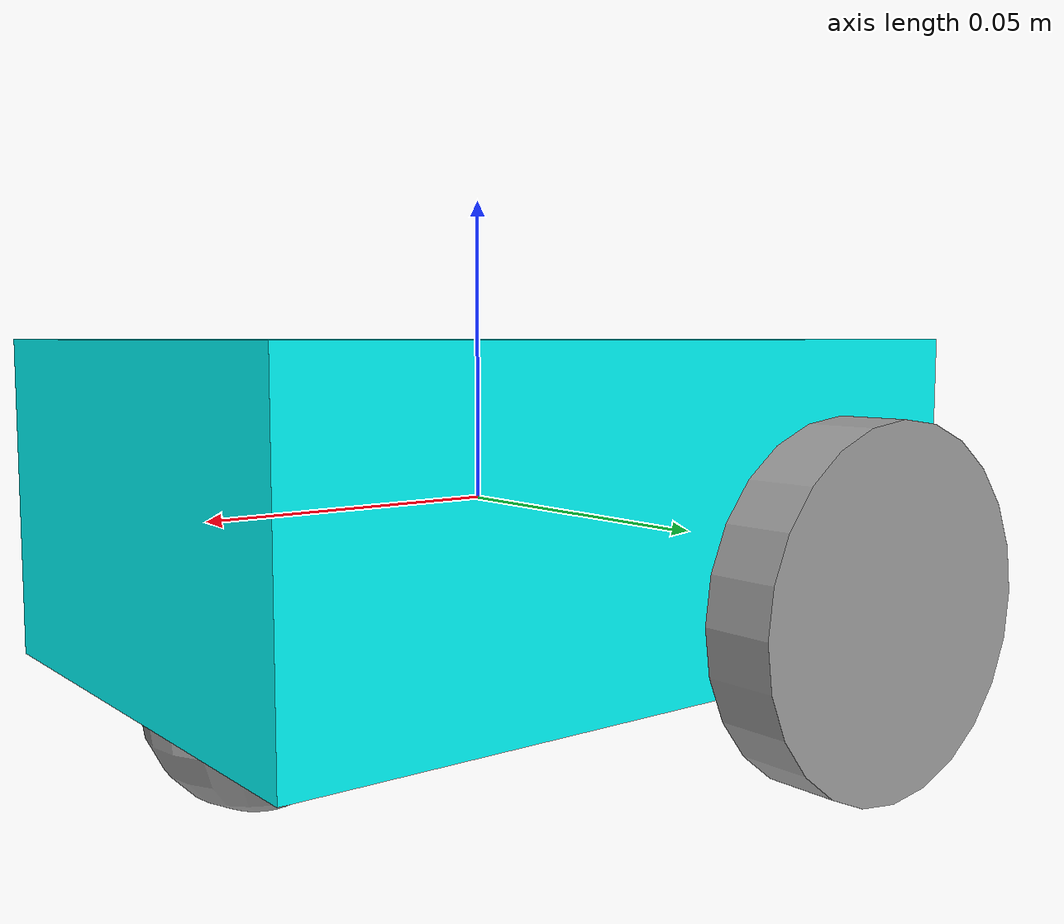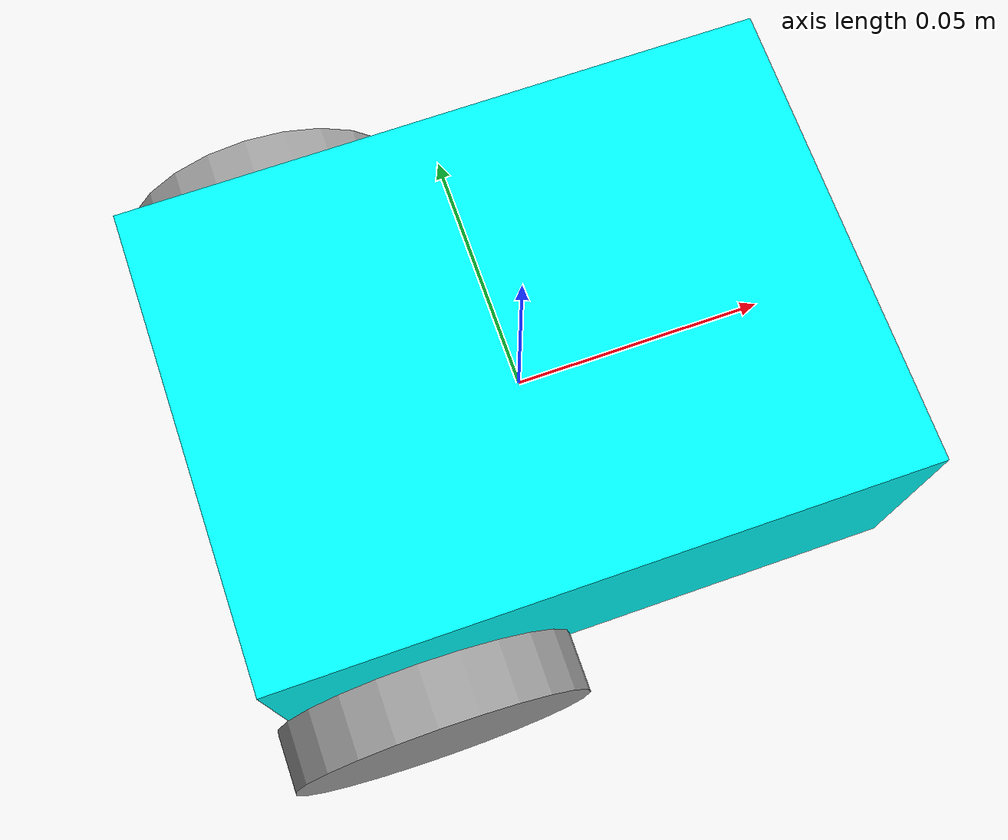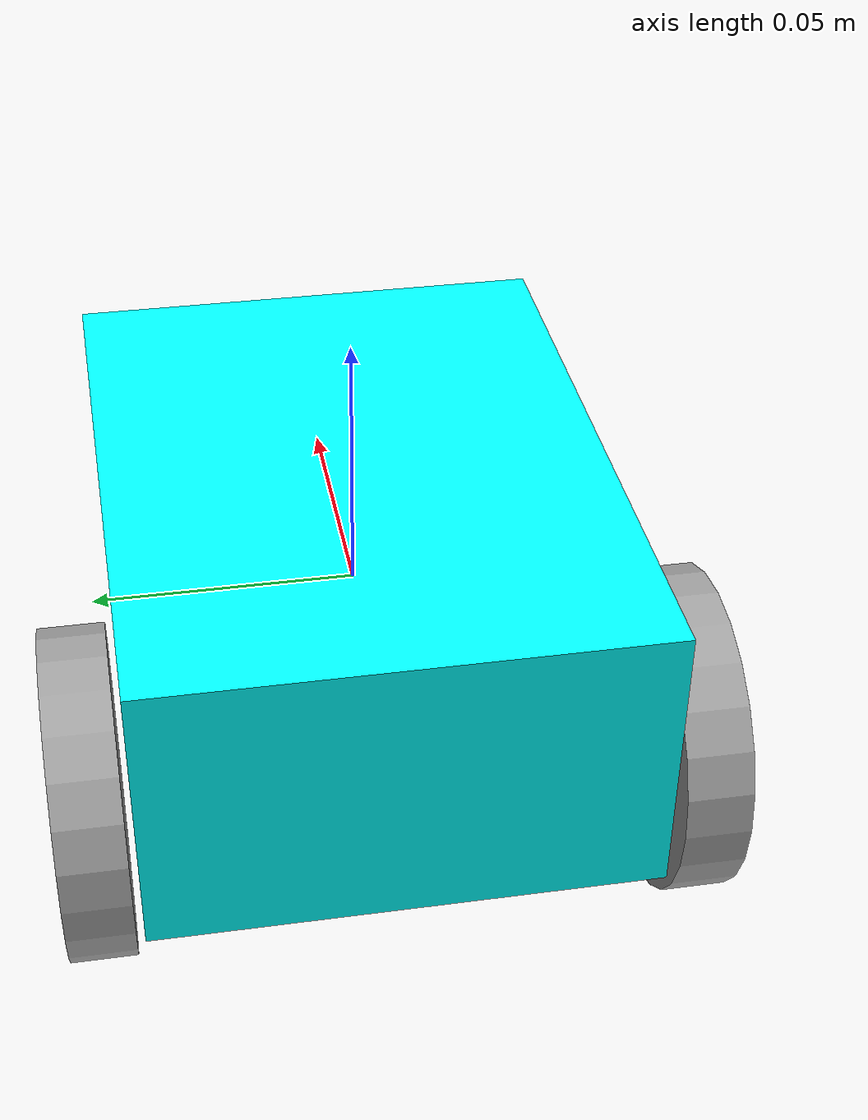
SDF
<?xml version="1.0" ?>
<sdf version='1.11'>
  <model name='sensors'>
    <link name='chassis'>
      <inertial>
        <pose>0 0 -0.044999999999999998 0 0 0</pose>
        <mass>1</mass>
        <inertia>
          <ixx>0.0009637500000000002</ixx>
          <ixy>1.7060354005542469e-19</ixy>
          <ixz>-3.0593910047299102e-19</ixz>
          <iyy>0.0015659999999999999</iyy>
          <iyz>8.6665493702058186e-35</iyz>
          <izz>0.00204375</izz>
        </inertia>
      </inertial>
      <collision name='chassis_collision'>
        <pose>0 0 0 0 0 0</pose>
        <geometry>
          <box>
            <size>0.126 0.092999999999999999 0.053999999999999999</size>
          </box>
        </geometry>
      </collision>
      <visual name='chassis_visual'>
        <pose>0 0 0 0 0 0</pose>
        <geometry>
          <box>
            <size>0.126 0.092999999999999999 0.053999999999999999</size>
          </box>
        </geometry>
        <material>
          <diffuse>0 1 1 1</diffuse>
          <ambient>0 1 1 1</ambient>
        </material>
      </visual>

      <sensor name="imu" type="imu">
        <always_on>1</always_on>
        <update_rate>100</update_rate>
        <visualize>true</visualize>
        <topic>imu</topic>
        <enable_metrics>true</enable_metrics>
      </sensor>

      <sensor name='gpu_lidar' type='gpu_lidar'>"
        <pose relative_to='lidar_frame'>0 0 0 0 0 0</pose>
        <topic>lidar</topic>
        <update_rate>10</update_rate>
        <ray>
            <scan>
                <horizontal>
                    <samples>640</samples>
                    <resolution>1</resolution>
                    <min_angle>-1.396263</min_angle>
                    <max_angle>1.396263</max_angle>
                </horizontal>
                <vertical>
                    <samples>1</samples>
                    <resolution>0.01</resolution>
                    <min_angle>0</min_angle>
                    <max_angle>0</max_angle>
                </vertical>
            </scan>
            <range>
                <min>0.08</min>
                <max>10.0</max>
                <resolution>0.01</resolution>
            </range>
        </ray>
        <always_on>1</always_on>
        <visualize>true</visualize>
      </sensor>

      <sensor name="depth" type="depth_camera">
        <pose relative_to='depth_frame'>0 0 0 0 0 0</pose>
        <topic>depth_camera</topic>
        <update_rate>6</update_rate>
        <always_on>0</always_on>
        <camera>
          <horizontal_fov>1.51843645</horizontal_fov>
          <image>
            <width>848</width>
            <height>480</height>
            <format>R_FLOAT32</format>
          </image>
          <clip>
            <near>0.1</near>
            <far>10</far>
          </clip>
          <lens>
            <intrinsics>
              <fx>421.61578369140625</fx>
              <fy>421.61578369140625</fy>
              <cx>422.2854309082031</cx>
              <cy>236.57237243652344</cy>
              <s>0</s>
            </intrinsics>
          </lens>
        </camera>
      </sensor>

    </link>

    <joint name='caster_joint' type='ball'>
      <pose relative_to='chassis'>0.042000000000000003 0 -0.027 0 0 0</pose>
      <parent>chassis</parent>
      <child>caster</child>
    </joint>

    <link name='caster'>
      <pose relative_to='caster_joint'>0 0 0 0 0 0</pose>
      <inertial>
        <pose>0 0 0 0 0 0</pose>
        <mass>0.10000000000000001</mass>
        <inertia>
          <ixx>1.296e-05</ixx>
          <ixy>0</ixy>
          <ixz>0</ixz>
          <iyy>1.296e-05</iyy>
          <iyz>0</iyz>
          <izz>1.296e-05</izz>
        </inertia>
      </inertial>
      <collision name='caster_collision'>
        <pose>0 0 0 0 0 0</pose>
        <geometry>
          <sphere>
            <radius>0.017999999999999999</radius>
          </sphere>
        </geometry>
      </collision>
      <visual name='caster_visual'>
        <pose>0 0 0 0 0 0</pose>
        <geometry>
          <sphere>
            <radius>0.017999999999999999</radius>
          </sphere>
        </geometry>
        <material>
          <diffuse>0.625 0.625 0.625 1</diffuse>
          <ambient>0.625 0.625 0.625 1</ambient>
        </material>
      </visual>
    </link>

    <joint name='left_wheel_joint' type='revolute'>
      <pose relative_to='chassis'>-0.035999999999999997 0.053999999999999999 -0.014999999999999999 0 0 0</pose>
      <parent>chassis</parent>
      <child>left_wheel</child>
      <axis>
        <xyz>0 1 0</xyz>
        <limit>
          <lower>-inf</lower>
          <upper>inf</upper>
        </limit>
        <dynamics>
          <spring_reference>0</spring_reference>
          <spring_stiffness>0</spring_stiffness>
        </dynamics>
      </axis>
    </joint>

    <link name='left_wheel'>
      <pose relative_to='left_wheel_joint'>0 0 0 0 0 0</pose>
      <inertial>
        <pose>0 0 0 1.5707963267948959 0 0</pose>
        <mass>0.10000000000000001</mass>
        <inertia>
          <ixx>2.37e-05</ixx>
          <ixy>0</ixy>
          <ixz>0</ixz>
          <iyy>2.37e-05</iyy>
          <iyz>0</iyz>
          <izz>4.5000000000000003e-05</izz>
        </inertia>
      </inertial>
      <collision name='left_wheel_collision'>
        <pose>0 0 0 1.5707963267948959 0 0</pose>
        <geometry>
          <cylinder>
            <length>0.012</length>
            <radius>0.029999999999999999</radius>
          </cylinder>
        </geometry>
      </collision>
      <visual name='left_wheel_visual'>
        <pose>0 0 0 1.5707963267948959 0 0</pose>
        <geometry>
          <cylinder>
            <length>0.012</length>
            <radius>0.029999999999999999</radius>
          </cylinder>
        </geometry>
        <material>
          <diffuse>0.625 0.625 0.625 1</diffuse>
          <ambient>0.625 0.625 0.625 1</ambient>
        </material>
      </visual>
    </link>

    <joint name='right_wheel_joint' type='revolute'>
      <pose relative_to='chassis'>-0.035999999999999997 -0.053999999999999999 -0.014999999999999999 0 0 0</pose>
      <parent>chassis</parent>
      <child>right_wheel</child>
      <axis>
        <xyz>0 1 0</xyz>
        <limit>
          <lower>-inf</lower>
          <upper>inf</upper>
        </limit>
        <dynamics>
          <spring_reference>0</spring_reference>
          <spring_stiffness>0</spring_stiffness>
        </dynamics>
      </axis>
    </joint>

    <link name='right_wheel'>
      <pose relative_to='right_wheel_joint'>0 0 0 0 0 0</pose>
      <inertial>
        <pose>0 0 0 1.5707963267948959 0 0</pose>
        <mass>0.10000000000000001</mass>
        <inertia>
          <ixx>2.37e-05</ixx>
          <ixy>0</ixy>
          <ixz>0</ixz>
          <iyy>2.37e-05</iyy>
          <iyz>0</iyz>
          <izz>4.5000000000000003e-05</izz>
        </inertia>
      </inertial>
      <collision name='right_wheel_collision'>
        <pose>0 0 0 1.5707963267948959 0 0</pose>
        <geometry>
          <cylinder>
            <length>0.012</length>
            <radius>0.029999999999999999</radius>
          </cylinder>
        </geometry>
      </collision>
      <visual name='right_wheel_visual'>
        <pose>0 0 0 1.5707963267948959 0 0</pose>
        <geometry>
          <cylinder>
            <length>0.012</length>
            <radius>0.029999999999999999</radius>
          </cylinder>
        </geometry>
        <material>
          <diffuse>0.625 0.625 0.625 1</diffuse>
          <ambient>0.625 0.625 0.625 1</ambient>
        </material>
      </visual>
    </link>

    <frame name='base_joint' attached_to='chassis'>
      <pose>0 0 -0.044999999999999998 0 0 0</pose>
    </frame>

    <frame name='base_footprint' attached_to='base_joint'>
      <pose>0 0 0 0 0 0</pose>
    </frame>

    <frame name='depth_frame' attached_to='chassis'>
      <pose relative_to='chassis'>0.063 0 0.025 0 0 0</pose>
    </frame>

    <frame name='lidar_frame' attached_to='chassis'>
      <pose relative_to='chassis'>0.063 0 0.025 0 0 0</pose>
    </frame>

    <plugin
      filename="ignition-gazebo-diff-drive-system"
      name="ignition::gazebo::systems::DiffDrive">
      <left_joint>left_wheel_joint</left_joint>
      <right_joint>right_wheel_joint</right_joint>
      <wheel_separation>0.093</wheel_separation>
      <wheel_radius>0.03</wheel_radius>
      <odom_publish_frequency>1</odom_publish_frequency>
      <max_linear_acceleration>1</max_linear_acceleration>
      <min_linear_acceleration>-1</min_linear_acceleration>
      <max_angular_acceleration>2</max_angular_acceleration>
      <min_angular_acceleration>-2</min_angular_acceleration>
      <max_linear_velocity>0.5</max_linear_velocity>
      <min_linear_velocity>-0.5</min_linear_velocity>
      <max_angular_velocity>1</max_angular_velocity>
      <min_angular_velocity>-1</min_angular_velocity>
    </plugin>

  </model>
</sdf>
